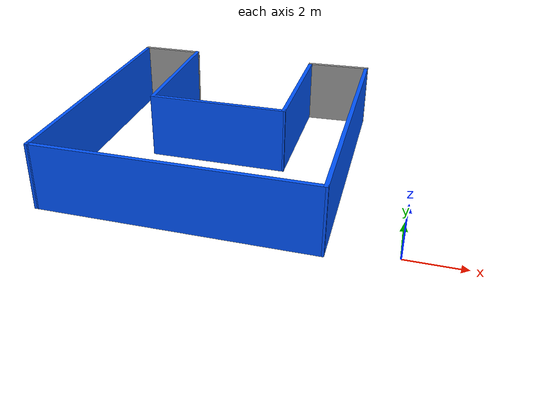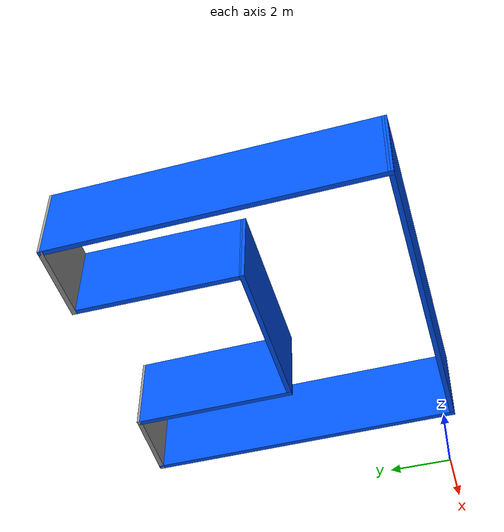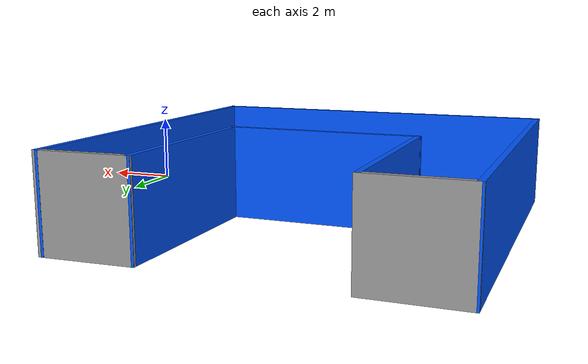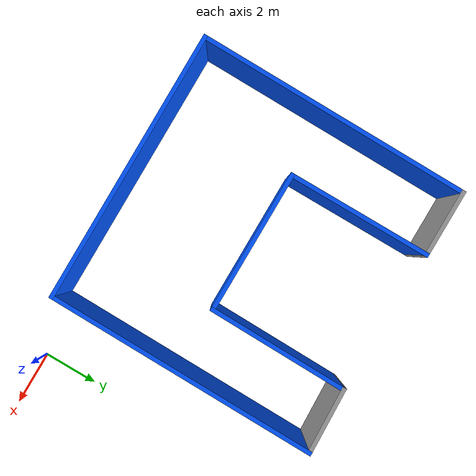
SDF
<?xml version='1.0'?>
<sdf version='1.6'>
  <model name='myubuilding'>
    <pose frame=''>-7.23789 4.47035 0 0 -0 0</pose>
    <link name='Wall_10'>
      <collision name='Wall_10_Collision'>
        <geometry>
          <box>
            <size>10 0.15 2.5</size>
          </box>
        </geometry>
        <pose frame=''>0 0 1.25 0 -0 0</pose>
      </collision>
      <visual name='Wall_10_Visual'>
        <pose frame=''>0 0 1.25 0 -0 0</pose>
        <geometry>
          <box>
            <size>10 0.15 2.5</size>
          </box>
        </geometry>
        <material>
          <script>
            <uri>file://media/materials/scripts/gazebo.material</uri>
            <name>Gazebo/Grey</name>
          </script>
          <ambient>0 0.333333 1 1</ambient>
        </material>
        <meta>
          <layer>0</layer>
        </meta>
      </visual>
      <pose frame=''>-0.061112 -4.92535 0 0 -0 0</pose>
    </link>
    <link name='Wall_11'>
      <collision name='Wall_11_Collision'>
        <geometry>
          <box>
            <size>10 0.15 2.5</size>
          </box>
        </geometry>
        <pose frame=''>0 0 1.25 0 -0 0</pose>
      </collision>
      <visual name='Wall_11_Visual'>
        <pose frame=''>0 0 1.25 0 -0 0</pose>
        <geometry>
          <box>
            <size>10 0.15 2.5</size>
          </box>
        </geometry>
        <material>
          <script>
            <uri>file://media/materials/scripts/gazebo.material</uri>
            <name>Gazebo/Grey</name>
          </script>
          <ambient>0 0.333333 1 1</ambient>
        </material>
        <meta>
          <layer>0</layer>
        </meta>
      </visual>
      <pose frame=''>4.92389 -0.000845 0 0 -0 1.55861</pose>
    </link>
    <link name='Wall_12'>
      <collision name='Wall_12_Collision'>
        <geometry>
          <box>
            <size>2.5 0.15 2.5</size>
          </box>
        </geometry>
        <pose frame=''>0 0 1.25 0 -0 0</pose>
      </collision>
      <visual name='Wall_12_Visual'>
        <pose frame=''>0 0 1.25 0 -0 0</pose>
        <geometry>
          <box>
            <size>2.5 0.15 2.5</size>
          </box>
        </geometry>
        <material>
          <script>
            <uri>file://media/materials/scripts/gazebo.material</uri>
            <name>Gazebo/Grey</name>
          </script>
          <ambient>1 1 1 1</ambient>
        </material>
        <meta>
          <layer>0</layer>
        </meta>
      </visual>
      <pose frame=''>3.80989 4.88016 0 0 0 -3.10456</pose>
    </link>
    <link name='Wall_13'>
      <collision name='Wall_13_Collision'>
        <geometry>
          <box>
            <size>5.16292 0.15 2.5</size>
          </box>
        </geometry>
        <pose frame=''>0 0 1.25 0 -0 0</pose>
      </collision>
      <visual name='Wall_13_Visual'>
        <pose frame=''>0 0 1.25 0 -0 0</pose>
        <geometry>
          <box>
            <size>5.16292 0.15 2.5</size>
          </box>
        </geometry>
        <material>
          <script>
            <uri>file://media/materials/scripts/gazebo.material</uri>
            <name>Gazebo/Grey</name>
          </script>
          <ambient>0 0.333333 1 1</ambient>
        </material>
        <meta>
          <layer>0</layer>
        </meta>
      </visual>
      <pose frame=''>2.59569 2.33046 0 0 0 -1.58683</pose>
    </link>
    <link name='Wall_14'>
      <collision name='Wall_14_Collision'>
        <geometry>
          <box>
            <size>5.25 0.15 2.5</size>
          </box>
        </geometry>
        <pose frame=''>0 0 1.25 0 -0 0</pose>
      </collision>
      <visual name='Wall_14_Visual'>
        <pose frame=''>0 0 1.25 0 -0 0</pose>
        <geometry>
          <box>
            <size>5.25 0.15 2.5</size>
          </box>
        </geometry>
        <material>
          <script>
            <uri>file://media/materials/scripts/gazebo.material</uri>
            <name>Gazebo/Grey</name>
          </script>
          <ambient>0 0.333333 1 1</ambient>
        </material>
        <meta>
          <layer>0</layer>
        </meta>
      </visual>
      <pose frame=''>0.005499 -0.175734 0 0 -0 3.14159</pose>
    </link>
    <link name='Wall_15'>
      <collision name='Wall_15_Collision'>
        <geometry>
          <box>
            <size>5.25 0.15 2.5</size>
          </box>
        </geometry>
        <pose frame=''>0 0 1.25 0 -0 0</pose>
      </collision>
      <visual name='Wall_15_Visual'>
        <pose frame=''>0 0 1.25 0 -0 0</pose>
        <geometry>
          <box>
            <size>5.25 0.15 2.5</size>
          </box>
        </geometry>
        <material>
          <script>
            <uri>file://media/materials/scripts/gazebo.material</uri>
            <name>Gazebo/Grey</name>
          </script>
          <ambient>0 0.333333 1 1</ambient>
        </material>
        <meta>
          <layer>0</layer>
        </meta>
      </visual>
      <pose frame=''>-2.54431 2.37446 0 0 -0 1.57072</pose>
    </link>
    <link name='Wall_16'>
      <collision name='Wall_16_Collision'>
        <geometry>
          <box>
            <size>2.5 0.15 2.5</size>
          </box>
        </geometry>
        <pose frame=''>0 0 1.25 0 -0 0</pose>
      </collision>
      <visual name='Wall_16_Visual'>
        <pose frame=''>0 0 1.25 0 -0 0</pose>
        <geometry>
          <box>
            <size>2.5 0.15 2.5</size>
          </box>
        </geometry>
        <material>
          <script>
            <uri>file://media/materials/scripts/gazebo.material</uri>
            <name>Gazebo/Grey</name>
          </script>
          <ambient>1 1 1 1</ambient>
        </material>
        <meta>
          <layer>0</layer>
        </meta>
      </visual>
      <pose frame=''>-3.71911 4.92465 0 0 -0 3.14159</pose>
    </link>
    <link name='Wall_9'>
      <collision name='Wall_9_Collision'>
        <geometry>
          <box>
            <size>10 0.15 2.5</size>
          </box>
        </geometry>
        <pose frame=''>0 0 1.25 0 -0 0</pose>
      </collision>
      <visual name='Wall_9_Visual'>
        <pose frame=''>0 0 1.25 0 -0 0</pose>
        <geometry>
          <box>
            <size>10 0.15 2.5</size>
          </box>
        </geometry>
        <material>
          <script>
            <uri>file://media/materials/scripts/gazebo.material</uri>
            <name>Gazebo/Grey</name>
          </script>
          <ambient>0 0.333333 1 1</ambient>
        </material>
        <meta>
          <layer>0</layer>
        </meta>
      </visual>
      <pose frame=''>-4.94011 -0.000345 0 0 0 -1.58014</pose>
    </link>
    <static>1</static>
  </model>
</sdf>
